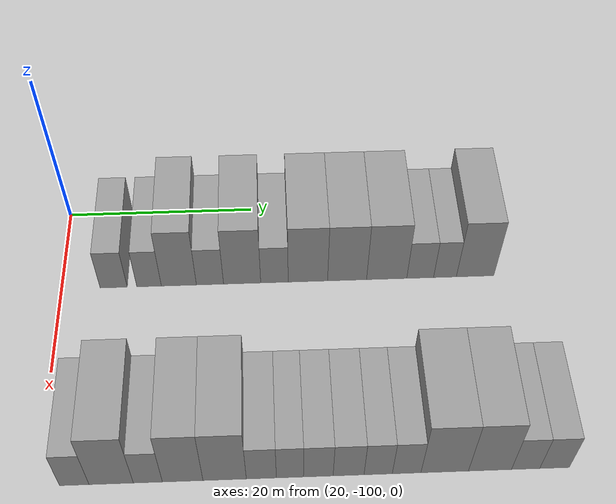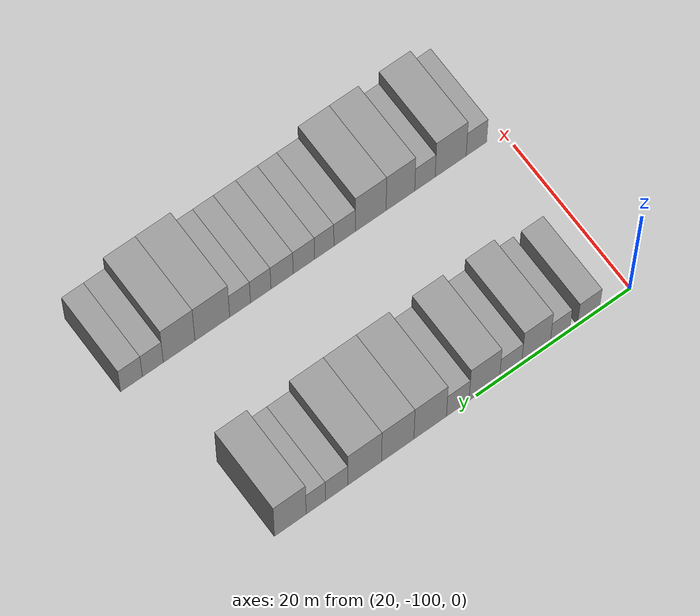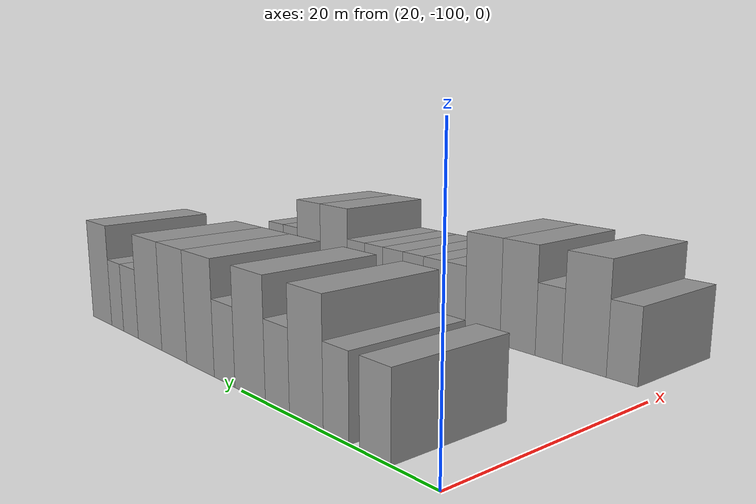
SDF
<sdf version="1.6">
 <world name="default">
  <model name="building_29">
   <static>1</static>
   <pose>25.0000 -94.5324 0 0.000000 0.000000 0.000000</pose>
   <link name="link">
    <pose>0 0 3.00 0 0 0</pose>
    <collision name="collision"><geometry><box><size>10.0000 2.8439 6.0000</size></box></geometry></collision>
    <visual name="visual">
     <cast_shadows>0</cast_shadows>
     <geometry><box><size>10.0000 2.8439 6.0000</size></box></geometry>
     <material>
      <script>
       <uri>model://grey_wall/materials/scripts</uri>
       <uri>model://grey_wall/materials/textures</uri>
       <name>vrc/grey_wall</name>
      </script>
     </material>
    </visual>
   </link>
  </model>
  <model name="building_30">
   <static>1</static>
   <pose>25.0000 -90.8245 0 0.000000 0.000000 0.000000</pose>
   <link name="link">
    <pose>0 0 3.00 0 0 0</pose>
    <collision name="collision"><geometry><box><size>10.0000 2.5719 6.0000</size></box></geometry></collision>
    <visual name="visual">
     <cast_shadows>0</cast_shadows>
     <geometry><box><size>10.0000 2.5719 6.0000</size></box></geometry>
     <material>
      <script>
       <uri>model://grey_wall/materials/scripts</uri>
       <uri>model://grey_wall/materials/textures</uri>
       <name>vrc/grey_wall</name>
      </script>
     </material>
    </visual>
   </link>
  </model>
  <model name="building_31">
   <static>1</static>
   <pose>25.0000 -87.6976 0 0.000000 0.000000 0.000000</pose>
   <link name="link">
    <pose>0 0 4.50 0 0 0</pose>
    <collision name="collision"><geometry><box><size>10.0000 3.6820 9.0000</size></box></geometry></collision>
    <visual name="visual">
     <cast_shadows>0</cast_shadows>
     <geometry><box><size>10.0000 3.6820 9.0000</size></box></geometry>
     <material>
      <script>
       <uri>model://grey_wall/materials/scripts</uri>
       <uri>model://grey_wall/materials/textures</uri>
       <name>vrc/grey_wall</name>
      </script>
     </material>
    </visual>
   </link>
  </model>
  <model name="building_32">
   <static>1</static>
   <pose>25.0000 -84.4292 0 0.000000 0.000000 0.000000</pose>
   <link name="link">
    <pose>0 0 3.00 0 0 0</pose>
    <collision name="collision"><geometry><box><size>10.0000 2.8549 6.0000</size></box></geometry></collision>
    <visual name="visual">
     <cast_shadows>0</cast_shadows>
     <geometry><box><size>10.0000 2.8549 6.0000</size></box></geometry>
     <material>
      <script>
       <uri>model://grey_wall/materials/scripts</uri>
       <uri>model://grey_wall/materials/textures</uri>
       <name>vrc/grey_wall</name>
      </script>
     </material>
    </visual>
   </link>
  </model>
  <model name="building_33">
   <static>1</static>
   <pose>25.0000 -81.0458 0 0.000000 0.000000 0.000000</pose>
   <link name="link">
    <pose>0 0 4.50 0 0 0</pose>
    <collision name="collision"><geometry><box><size>10.0000 3.9118 9.0000</size></box></geometry></collision>
    <visual name="visual">
     <cast_shadows>0</cast_shadows>
     <geometry><box><size>10.0000 3.9118 9.0000</size></box></geometry>
     <material>
      <script>
       <uri>model://grey_wall/materials/scripts</uri>
       <uri>model://grey_wall/materials/textures</uri>
       <name>vrc/grey_wall</name>
      </script>
     </material>
    </visual>
   </link>
  </model>
  <model name="building_34">
   <static>1</static>
   <pose>25.0000 -77.6416 0 0.000000 0.000000 0.000000</pose>
   <link name="link">
    <pose>0 0 3.00 0 0 0</pose>
    <collision name="collision"><geometry><box><size>10.0000 2.8966 6.0000</size></box></geometry></collision>
    <visual name="visual">
     <cast_shadows>0</cast_shadows>
     <geometry><box><size>10.0000 2.8966 6.0000</size></box></geometry>
     <material>
      <script>
       <uri>model://grey_wall/materials/scripts</uri>
       <uri>model://grey_wall/materials/textures</uri>
       <name>vrc/grey_wall</name>
      </script>
     </material>
    </visual>
   </link>
  </model>
  <model name="building_35">
   <static>1</static>
   <pose>25.0000 -74.1126 0 0.000000 0.000000 0.000000</pose>
   <link name="link">
    <pose>0 0 4.50 0 0 0</pose>
    <collision name="collision"><geometry><box><size>10.0000 4.1612 9.0000</size></box></geometry></collision>
    <visual name="visual">
     <cast_shadows>0</cast_shadows>
     <geometry><box><size>10.0000 4.1612 9.0000</size></box></geometry>
     <material>
      <script>
       <uri>model://grey_wall/materials/scripts</uri>
       <uri>model://grey_wall/materials/textures</uri>
       <name>vrc/grey_wall</name>
      </script>
     </material>
    </visual>
   </link>
  </model>
  <model name="building_36">
   <static>1</static>
   <pose>25.0000 -69.9689 0 0.000000 0.000000 0.000000</pose>
   <link name="link">
    <pose>0 0 4.50 0 0 0</pose>
    <collision name="collision"><geometry><box><size>10.0000 4.1262 9.0000</size></box></geometry></collision>
    <visual name="visual">
     <cast_shadows>0</cast_shadows>
     <geometry><box><size>10.0000 4.1262 9.0000</size></box></geometry>
     <material>
      <script>
       <uri>model://grey_wall/materials/scripts</uri>
       <uri>model://grey_wall/materials/textures</uri>
       <name>vrc/grey_wall</name>
      </script>
     </material>
    </visual>
   </link>
  </model>
  <model name="building_37">
   <static>1</static>
   <pose>25.0000 -65.7747 0 0.000000 0.000000 0.000000</pose>
   <link name="link">
    <pose>0 0 4.50 0 0 0</pose>
    <collision name="collision"><geometry><box><size>10.0000 4.2623 9.0000</size></box></geometry></collision>
    <visual name="visual">
     <cast_shadows>0</cast_shadows>
     <geometry><box><size>10.0000 4.2623 9.0000</size></box></geometry>
     <material>
      <script>
       <uri>model://grey_wall/materials/scripts</uri>
       <uri>model://grey_wall/materials/textures</uri>
       <name>vrc/grey_wall</name>
      </script>
     </material>
    </visual>
   </link>
  </model>
  <model name="building_38">
   <static>1</static>
   <pose>25.0000 -62.2208 0 0.000000 0.000000 0.000000</pose>
   <link name="link">
    <pose>0 0 3.00 0 0 0</pose>
    <collision name="collision"><geometry><box><size>10.0000 2.8455 6.0000</size></box></geometry></collision>
    <visual name="visual">
     <cast_shadows>0</cast_shadows>
     <geometry><box><size>10.0000 2.8455 6.0000</size></box></geometry>
     <material>
      <script>
       <uri>model://grey_wall/materials/scripts</uri>
       <uri>model://grey_wall/materials/textures</uri>
       <name>vrc/grey_wall</name>
      </script>
     </material>
    </visual>
   </link>
  </model>
  <model name="building_39">
   <static>1</static>
   <pose>25.0000 -59.5873 0 0.000000 0.000000 0.000000</pose>
   <link name="link">
    <pose>0 0 3.00 0 0 0</pose>
    <collision name="collision"><geometry><box><size>10.0000 2.4215 6.0000</size></box></geometry></collision>
    <visual name="visual">
     <cast_shadows>0</cast_shadows>
     <geometry><box><size>10.0000 2.4215 6.0000</size></box></geometry>
     <material>
      <script>
       <uri>model://grey_wall/materials/scripts</uri>
       <uri>model://grey_wall/materials/textures</uri>
       <name>vrc/grey_wall</name>
      </script>
     </material>
    </visual>
   </link>
  </model>
  <model name="building_40">
   <static>1</static>
   <pose>25.0000 -56.3808 0 0.000000 0.000000 0.000000</pose>
   <link name="link">
    <pose>0 0 4.50 0 0 0</pose>
    <collision name="collision"><geometry><box><size>10.0000 3.9916 9.0000</size></box></geometry></collision>
    <visual name="visual">
     <cast_shadows>0</cast_shadows>
     <geometry><box><size>10.0000 3.9916 9.0000</size></box></geometry>
     <material>
      <script>
       <uri>model://grey_wall/materials/scripts</uri>
       <uri>model://grey_wall/materials/textures</uri>
       <name>vrc/grey_wall</name>
      </script>
     </material>
    </visual>
   </link>
  </model>
  <model name="building_131">
   <static>1</static>
   <pose>47.0000 -96.5466 0 0.000000 0.000000 0.000000</pose>
   <link name="link">
    <pose>0 0 3.00 0 0 0</pose>
    <collision name="collision"><geometry><box><size>10.0000 2.6924 6.0000</size></box></geometry></collision>
    <visual name="visual">
     <cast_shadows>0</cast_shadows>
     <geometry><box><size>10.0000 2.6924 6.0000</size></box></geometry>
     <material>
      <script>
       <uri>model://grey_wall/materials/scripts</uri>
       <uri>model://grey_wall/materials/textures</uri>
       <name>vrc/grey_wall</name>
      </script>
     </material>
    </visual>
   </link>
  </model>
  <model name="building_132">
   <static>1</static>
   <pose>47.0000 -93.1731 0 0.000000 0.000000 0.000000</pose>
   <link name="link">
    <pose>0 0 4.50 0 0 0</pose>
    <collision name="collision"><geometry><box><size>10.0000 4.0545 9.0000</size></box></geometry></collision>
    <visual name="visual">
     <cast_shadows>0</cast_shadows>
     <geometry><box><size>10.0000 4.0545 9.0000</size></box></geometry>
     <material>
      <script>
       <uri>model://grey_wall/materials/scripts</uri>
       <uri>model://grey_wall/materials/textures</uri>
       <name>vrc/grey_wall</name>
      </script>
     </material>
    </visual>
   </link>
  </model>
  <model name="building_133">
   <static>1</static>
   <pose>47.0000 -89.8118 0 0.000000 0.000000 0.000000</pose>
   <link name="link">
    <pose>0 0 3.00 0 0 0</pose>
    <collision name="collision"><geometry><box><size>10.0000 2.6682 6.0000</size></box></geometry></collision>
    <visual name="visual">
     <cast_shadows>0</cast_shadows>
     <geometry><box><size>10.0000 2.6682 6.0000</size></box></geometry>
     <material>
      <script>
       <uri>model://grey_wall/materials/scripts</uri>
       <uri>model://grey_wall/materials/textures</uri>
       <name>vrc/grey_wall</name>
      </script>
     </material>
    </visual>
   </link>
  </model>
  <model name="building_134">
   <static>1</static>
   <pose>47.0000 -86.6137 0 0.000000 0.000000 0.000000</pose>
   <link name="link">
    <pose>0 0 4.50 0 0 0</pose>
    <collision name="collision"><geometry><box><size>10.0000 3.7279 9.0000</size></box></geometry></collision>
    <visual name="visual">
     <cast_shadows>0</cast_shadows>
     <geometry><box><size>10.0000 3.7279 9.0000</size></box></geometry>
     <material>
      <script>
       <uri>model://grey_wall/materials/scripts</uri>
       <uri>model://grey_wall/materials/textures</uri>
       <name>vrc/grey_wall</name>
      </script>
     </material>
    </visual>
   </link>
  </model>
  <model name="building_135">
   <static>1</static>
   <pose>47.0000 -82.7559 0 0.000000 0.000000 0.000000</pose>
   <link name="link">
    <pose>0 0 4.50 0 0 0</pose>
    <collision name="collision"><geometry><box><size>10.0000 3.9877 9.0000</size></box></geometry></collision>
    <visual name="visual">
     <cast_shadows>0</cast_shadows>
     <geometry><box><size>10.0000 3.9877 9.0000</size></box></geometry>
     <material>
      <script>
       <uri>model://grey_wall/materials/scripts</uri>
       <uri>model://grey_wall/materials/textures</uri>
       <name>vrc/grey_wall</name>
      </script>
     </material>
    </visual>
   </link>
  </model>
  <model name="building_136">
   <static>1</static>
   <pose>47.0000 -79.3757 0 0.000000 0.000000 0.000000</pose>
   <link name="link">
    <pose>0 0 3.00 0 0 0</pose>
    <collision name="collision"><geometry><box><size>10.0000 2.7727 6.0000</size></box></geometry></collision>
    <visual name="visual">
     <cast_shadows>0</cast_shadows>
     <geometry><box><size>10.0000 2.7727 6.0000</size></box></geometry>
     <material>
      <script>
       <uri>model://grey_wall/materials/scripts</uri>
       <uri>model://grey_wall/materials/textures</uri>
       <name>vrc/grey_wall</name>
      </script>
     </material>
    </visual>
   </link>
  </model>
  <model name="building_137">
   <static>1</static>
   <pose>47.0000 -76.7412 0 0.000000 0.000000 0.000000</pose>
   <link name="link">
    <pose>0 0 3.00 0 0 0</pose>
    <collision name="collision"><geometry><box><size>10.0000 2.4962 6.0000</size></box></geometry></collision>
    <visual name="visual">
     <cast_shadows>0</cast_shadows>
     <geometry><box><size>10.0000 2.4962 6.0000</size></box></geometry>
     <material>
      <script>
       <uri>model://grey_wall/materials/scripts</uri>
       <uri>model://grey_wall/materials/textures</uri>
       <name>vrc/grey_wall</name>
      </script>
     </material>
    </visual>
   </link>
  </model>
  <model name="building_138">
   <static>1</static>
   <pose>47.0000 -74.1219 0 0.000000 0.000000 0.000000</pose>
   <link name="link">
    <pose>0 0 3.00 0 0 0</pose>
    <collision name="collision"><geometry><box><size>10.0000 2.7424 6.0000</size></box></geometry></collision>
    <visual name="visual">
     <cast_shadows>0</cast_shadows>
     <geometry><box><size>10.0000 2.7424 6.0000</size></box></geometry>
     <material>
      <script>
       <uri>model://grey_wall/materials/scripts</uri>
       <uri>model://grey_wall/materials/textures</uri>
       <name>vrc/grey_wall</name>
      </script>
     </material>
    </visual>
   </link>
  </model>
  <model name="building_139">
   <static>1</static>
   <pose>47.0000 -71.3223 0 0.000000 0.000000 0.000000</pose>
   <link name="link">
    <pose>0 0 3.00 0 0 0</pose>
    <collision name="collision"><geometry><box><size>10.0000 2.8569 6.0000</size></box></geometry></collision>
    <visual name="visual">
     <cast_shadows>0</cast_shadows>
     <geometry><box><size>10.0000 2.8569 6.0000</size></box></geometry>
     <material>
      <script>
       <uri>model://grey_wall/materials/scripts</uri>
       <uri>model://grey_wall/materials/textures</uri>
       <name>vrc/grey_wall</name>
      </script>
     </material>
    </visual>
   </link>
  </model>
  <model name="building_140">
   <static>1</static>
   <pose>47.0000 -68.5830 0 0.000000 0.000000 0.000000</pose>
   <link name="link">
    <pose>0 0 3.00 0 0 0</pose>
    <collision name="collision"><geometry><box><size>10.0000 2.6215 6.0000</size></box></geometry></collision>
    <visual name="visual">
     <cast_shadows>0</cast_shadows>
     <geometry><box><size>10.0000 2.6215 6.0000</size></box></geometry>
     <material>
      <script>
       <uri>model://grey_wall/materials/scripts</uri>
       <uri>model://grey_wall/materials/textures</uri>
       <name>vrc/grey_wall</name>
      </script>
     </material>
    </visual>
   </link>
  </model>
  <model name="building_141">
   <static>1</static>
   <pose>47.0000 -65.9440 0 0.000000 0.000000 0.000000</pose>
   <link name="link">
    <pose>0 0 3.00 0 0 0</pose>
    <collision name="collision"><geometry><box><size>10.0000 2.6566 6.0000</size></box></geometry></collision>
    <visual name="visual">
     <cast_shadows>0</cast_shadows>
     <geometry><box><size>10.0000 2.6566 6.0000</size></box></geometry>
     <material>
      <script>
       <uri>model://grey_wall/materials/scripts</uri>
       <uri>model://grey_wall/materials/textures</uri>
       <name>vrc/grey_wall</name>
      </script>
     </material>
    </visual>
   </link>
  </model>
  <model name="building_142">
   <static>1</static>
   <pose>47.0000 -62.4051 0 0.000000 0.000000 0.000000</pose>
   <link name="link">
    <pose>0 0 4.50 0 0 0</pose>
    <collision name="collision"><geometry><box><size>10.0000 4.4213 9.0000</size></box></geometry></collision>
    <visual name="visual">
     <cast_shadows>0</cast_shadows>
     <geometry><box><size>10.0000 4.4213 9.0000</size></box></geometry>
     <material>
      <script>
       <uri>model://grey_wall/materials/scripts</uri>
       <uri>model://grey_wall/materials/textures</uri>
       <name>vrc/grey_wall</name>
      </script>
     </material>
    </visual>
   </link>
  </model>
  <model name="building_143">
   <static>1</static>
   <pose>47.0000 -58.1869 0 0.000000 0.000000 0.000000</pose>
   <link name="link">
    <pose>0 0 4.50 0 0 0</pose>
    <collision name="collision"><geometry><box><size>10.0000 4.0150 9.0000</size></box></geometry></collision>
    <visual name="visual">
     <cast_shadows>0</cast_shadows>
     <geometry><box><size>10.0000 4.0150 9.0000</size></box></geometry>
     <material>
      <script>
       <uri>model://grey_wall/materials/scripts</uri>
       <uri>model://grey_wall/materials/textures</uri>
       <name>vrc/grey_wall</name>
      </script>
     </material>
    </visual>
   </link>
  </model>
  <model name="building_144">
   <static>1</static>
   <pose>47.0000 -54.8597 0 0.000000 0.000000 0.000000</pose>
   <link name="link">
    <pose>0 0 3.00 0 0 0</pose>
    <collision name="collision"><geometry><box><size>10.0000 2.6394 6.0000</size></box></geometry></collision>
    <visual name="visual">
     <cast_shadows>0</cast_shadows>
     <geometry><box><size>10.0000 2.6394 6.0000</size></box></geometry>
     <material>
      <script>
       <uri>model://grey_wall/materials/scripts</uri>
       <uri>model://grey_wall/materials/textures</uri>
       <name>vrc/grey_wall</name>
      </script>
     </material>
    </visual>
   </link>
  </model>
  <model name="building_145">
   <static>1</static>
   <pose>47.0000 -52.1606 0 0.000000 0.000000 0.000000</pose>
   <link name="link">
    <pose>0 0 3.00 0 0 0</pose>
    <collision name="collision"><geometry><box><size>10.0000 2.7588 6.0000</size></box></geometry></collision>
    <visual name="visual">
     <cast_shadows>0</cast_shadows>
     <geometry><box><size>10.0000 2.7588 6.0000</size></box></geometry>
     <material>
      <script>
       <uri>model://grey_wall/materials/scripts</uri>
       <uri>model://grey_wall/materials/textures</uri>
       <name>vrc/grey_wall</name>
      </script>
     </material>
    </visual>
   </link>
  </model>
 </world>
</sdf>
